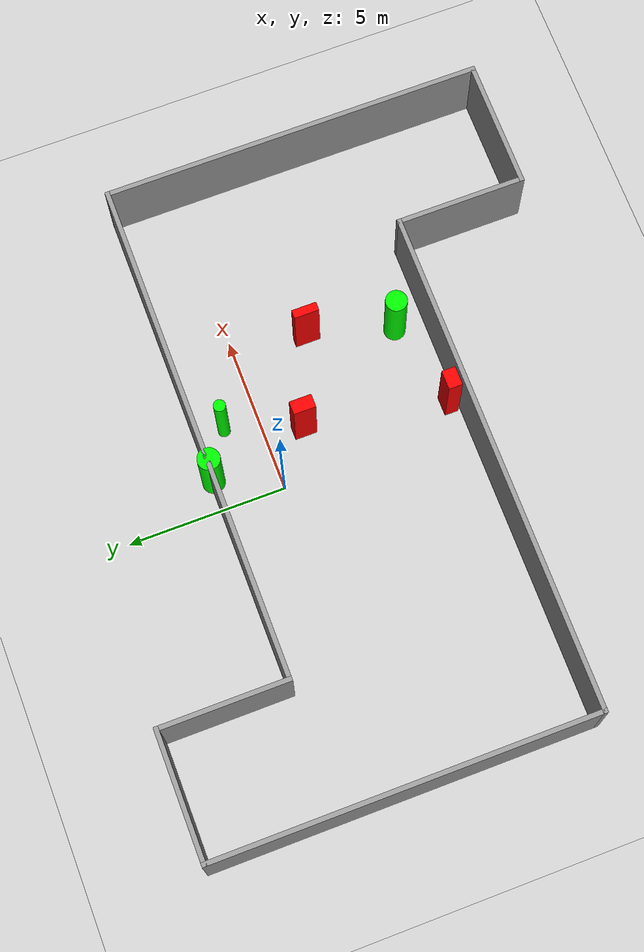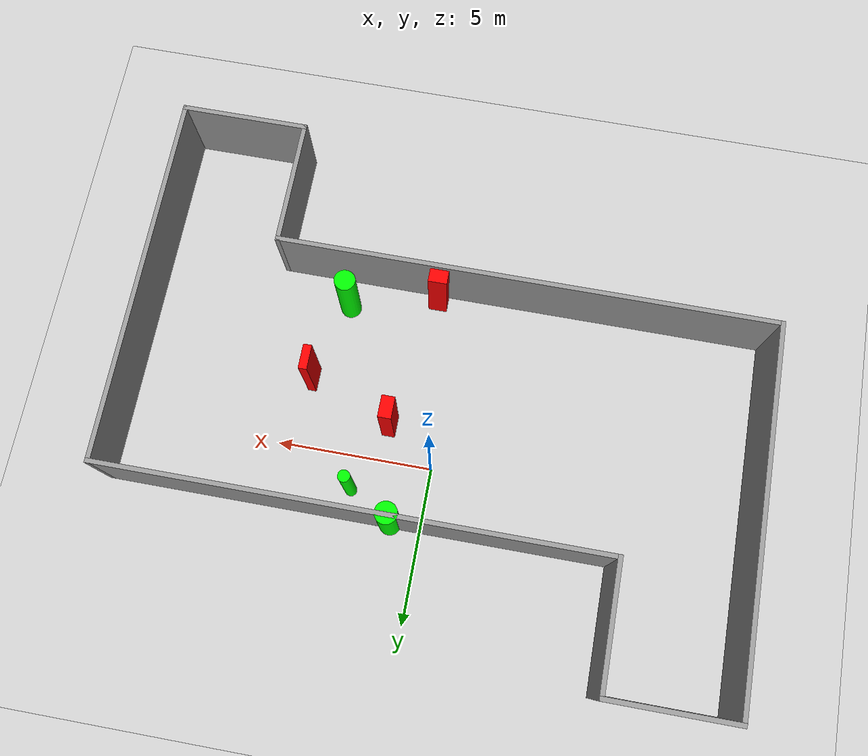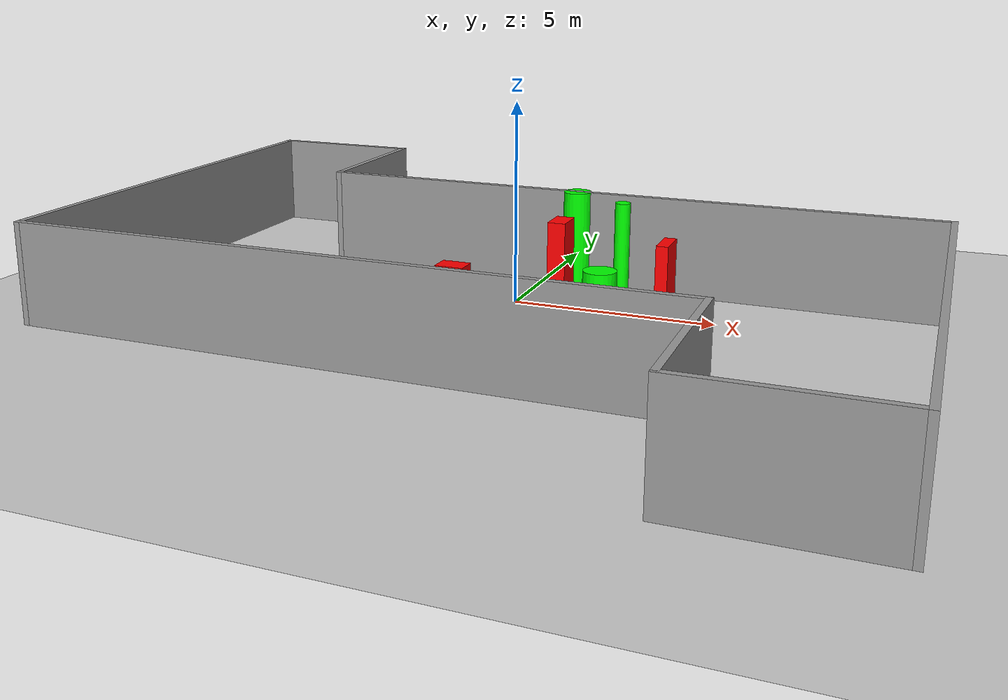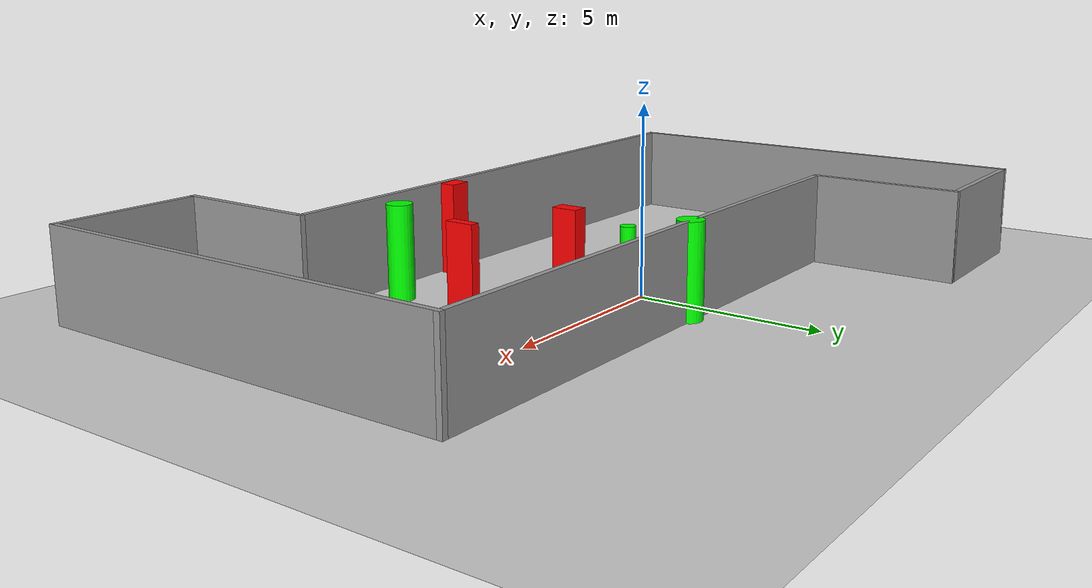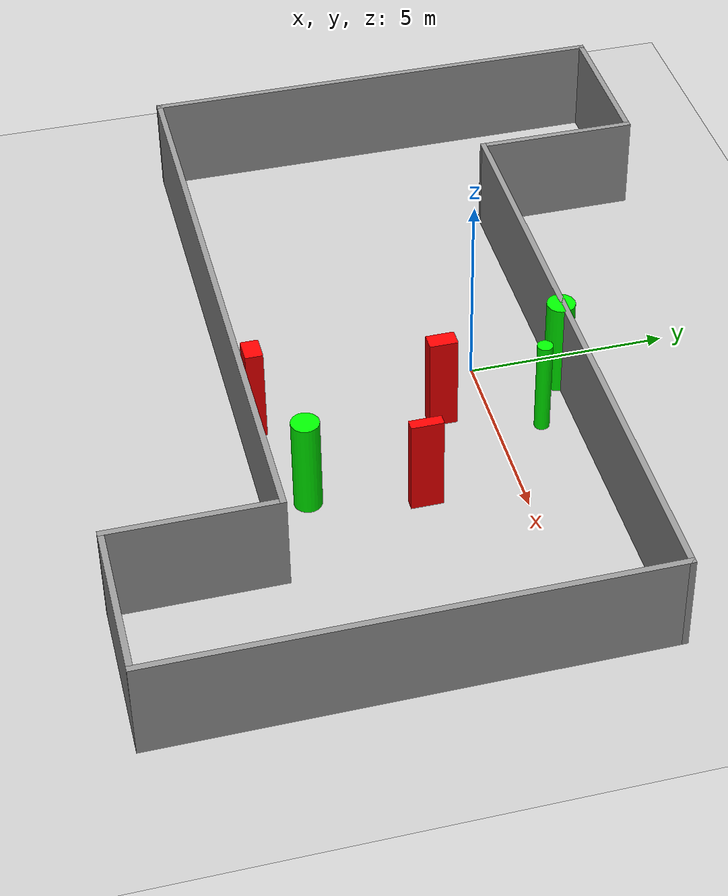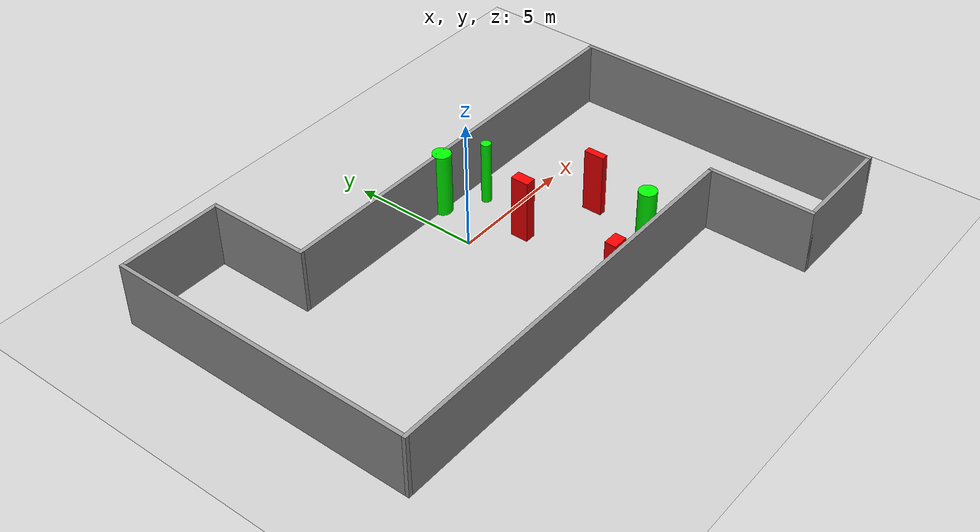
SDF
<sdf version="1.7">
 <world name="default">
  <light name="sun" type="directional">
   <pose>0 0 10 0 -0 0</pose>
   <diffuse>0.8 0.8 0.8 1</diffuse>
   <specular>0.2 0.2 0.2 1</specular>
   <attenuation>
    <range>1000</range>
    <constant>0.9</constant>
    <linear>0.01</linear>
    <quadratic>0.001</quadratic>
   </attenuation>
   <direction>-0.5 0.1 -0.9</direction>
   <spot><inner_angle>0</inner_angle><outer_angle>0</outer_angle><falloff>0</falloff></spot>
  </light>
  <model name="ground_plane">
   <static>1</static>
   <link name="link">
    <collision name="collision">
     <geometry><plane><normal>0 0 1</normal><size>100 100</size></plane></geometry>
     <surface>
      <contact><collide_bitmask>65535</collide_bitmask></contact>
      <friction><ode><mu>100</mu><mu2>50</mu2></ode></friction>
     </surface>
    </collision>
    <visual name="visual">
     <cast_shadows>0</cast_shadows>
     <geometry><plane><normal>0 0 1</normal><size>100 100</size></plane></geometry>
     <material>
      <script><uri>file://media/materials/scripts/gazebo.material</uri><name>Gazebo/Grey</name></script>
     </material>
    </visual>
   </link>
  </model>
  <gravity>0 0 -9.8</gravity>
  <magnetic_field>6e-06 2.3e-05 -4.2e-05</magnetic_field>
  <atmosphere type="adiabatic"/>
  <physics type="ode">
   <max_step_size>0.001</max_step_size>
   <real_time_factor>1</real_time_factor>
   <real_time_update_rate>1000</real_time_update_rate>
  </physics>
  <scene><ambient>0.4 0.4 0.4 1</ambient><background>0.7 0.7 0.7 1</background><shadows>1</shadows></scene>
  <spherical_coordinates>
   <surface_model>EARTH_WGS84</surface_model>
   <latitude_deg>0</latitude_deg>
   <longitude_deg>0</longitude_deg>
   <elevation>0</elevation>
   <heading_deg>0</heading_deg>
  </spherical_coordinates>
  <model name="my_base_walls">
   <link name="Wall_13">
    <collision name="Wall_13_Collision">
     <geometry><box><size>12.15 0.15 2.5</size></box></geometry>
     <pose>0 0 1.25 0 -0 0</pose>
    </collision>
    <visual name="Wall_13_Visual">
     <pose>0 0 1.25 0 -0 0</pose>
     <geometry><box><size>12.15 0.15 2.5</size></box></geometry>
     <material>
      <script><uri>file://media/materials/scripts/gazebo.material</uri><name>Gazebo/Grey</name></script>
      <ambient>1 1 1 1</ambient>
     </material>
     <meta><layer>0</layer></meta>
    </visual>
    <pose>10 -2 0 0 -0 1.5708</pose>
   </link>
   <link name="Wall_15">
    <collision name="Wall_15_Collision">
     <geometry><box><size>16.15 0.15 2.5</size></box></geometry>
     <pose>0 0 1.25 0 -0 0</pose>
    </collision>
    <visual name="Wall_15_Visual">
     <pose>0 0 1.25 0 -0 0</pose>
     <geometry><box><size>16.15 0.15 2.5</size></box></geometry>
     <material>
      <script><uri>file://media/materials/scripts/gazebo.material</uri><name>Gazebo/Grey</name></script>
      <ambient>1 1 1 1</ambient>
     </material>
     <meta><layer>0</layer></meta>
    </visual>
    <pose>2 4 0 0 -0 3.14159</pose>
   </link>
   <link name="Wall_17">
    <collision name="Wall_17_Collision">
     <geometry><box><size>4.15 0.15 2.5</size></box></geometry>
     <pose>0 0 1.25 0 -0 0</pose>
    </collision>
    <visual name="Wall_17_Visual">
     <pose>0 0 1.25 0 -0 0</pose>
     <geometry><box><size>4.15 0.15 2.5</size></box></geometry>
     <material>
      <script><uri>file://media/materials/scripts/gazebo.material</uri><name>Gazebo/Grey</name></script>
      <ambient>1 1 1 1</ambient>
     </material>
     <meta><layer>0</layer></meta>
    </visual>
    <pose>6 -6 0 0 -0 -1.5708</pose>
   </link>
   <link name="Wall_19">
    <collision name="Wall_19_Collision">
     <geometry><box><size>12.15 0.15 2.5</size></box></geometry>
     <pose>0 0 1.25 0 -0 0</pose>
    </collision>
    <visual name="Wall_19_Visual">
     <pose>0 0 1.25 0 -0 0</pose>
     <geometry><box><size>12.15 0.15 2.5</size></box></geometry>
     <material>
      <script><uri>file://media/materials/scripts/gazebo.material</uri><name>Gazebo/Grey</name></script>
      <ambient>1 1 1 1</ambient>
     </material>
     <meta><layer>0</layer></meta>
    </visual>
    <pose>-10 2 0 0 -0 1.5708</pose>
   </link>
   <link name="Wall_21">
    <collision name="Wall_21_Collision">
     <geometry><box><size>4.15 0.15 2.5</size></box></geometry>
     <pose>0 0 1.25 0 -0 0</pose>
    </collision>
    <visual name="Wall_21_Visual">
     <pose>0 0 1.25 0 -0 0</pose>
     <geometry><box><size>4.15 0.15 2.5</size></box></geometry>
     <material>
      <script><uri>file://media/materials/scripts/gazebo.material</uri><name>Gazebo/Grey</name></script>
      <ambient>1 1 1 1</ambient>
     </material>
     <meta><layer>0</layer></meta>
    </visual>
    <pose>-8 8 0 0 -0 0</pose>
   </link>
   <link name="Wall_23">
    <collision name="Wall_23_Collision">
     <geometry><box><size>4.15 0.15 2.5</size></box></geometry>
     <pose>0 0 1.25 0 -0 0</pose>
    </collision>
    <visual name="Wall_23_Visual">
     <pose>0 0 1.25 0 -0 0</pose>
     <geometry><box><size>4.15 0.15 2.5</size></box></geometry>
     <material>
      <script><uri>file://media/materials/scripts/gazebo.material</uri><name>Gazebo/Grey</name></script>
      <ambient>1 1 1 1</ambient>
     </material>
     <meta><layer>0</layer></meta>
    </visual>
    <pose>-6 6 0 0 -0 -1.5708</pose>
   </link>
   <link name="Wall_25">
    <collision name="Wall_25_Collision">
     <geometry><box><size>4.15 0.15 2.5</size></box></geometry>
     <pose>0 0 1.25 0 -0 0</pose>
    </collision>
    <visual name="Wall_25_Visual">
     <pose>0 0 1.25 0 -0 0</pose>
     <geometry><box><size>4.15 0.15 2.5</size></box></geometry>
     <material>
      <script><uri>file://media/materials/scripts/gazebo.material</uri><name>Gazebo/Grey</name></script>
      <ambient>1 1 1 1</ambient>
     </material>
     <meta><layer>0</layer></meta>
    </visual>
    <pose>8 -8 0 0 -0 0</pose>
   </link>
   <link name="Wall_9">
    <collision name="Wall_9_Collision">
     <geometry><box><size>16.15 0.15 2.5</size></box></geometry>
     <pose>0 0 1.25 0 -0 0</pose>
    </collision>
    <visual name="Wall_9_Visual">
     <pose>0 0 1.25 0 -0 0</pose>
     <geometry><box><size>16.15 0.15 2.5</size></box></geometry>
     <material>
      <script><uri>file://media/materials/scripts/gazebo.material</uri><name>Gazebo/Grey</name></script>
      <ambient>1 1 1 1</ambient>
     </material>
     <meta><layer>0</layer></meta>
    </visual>
    <pose>-2 -4 0 0 -0 3.14159</pose>
   </link>
   <static>1</static>
   <pose>-0 -2 0 0 -0 0</pose>
  </model>
  <model name="cylinder1">
   <static>1</static>
   <link name="link">
    <inertial>
     <mass>1</mass>
     <inertia><ixx>0.5</ixx><ixy>0</ixy><ixz>0</ixz><iyy>0.5</iyy><iyz>0</iyz><izz>1</izz></inertia>
    </inertial>
    <collision name="collision">
     <geometry><cylinder><radius>0.18995574052644645</radius><length>2.5</length></cylinder></geometry>
    </collision>
    <visual name="visual">
     <geometry><cylinder><radius>0.18995574052644645</radius><length>2.5</length></cylinder></geometry>
     <material>
      <ambient>0 1 0 1</ambient>
      <diffuse>0 1 0 1</diffuse>
      <specular>0.1 0.1 0.1 1</specular>
      <emissive>0 0 0 0</emissive>
     </material>
    </visual>
   </link>
   <pose>2.385269963423241 1.1038499742370735 1.25 0 0 0</pose>
  </model>
  <model name="cylinder2">
   <static>1</static>
   <link name="link">
    <inertial>
     <mass>1</mass>
     <inertia><ixx>0.5</ixx><ixy>0</ixy><ixz>0</ixz><iyy>0.5</iyy><iyz>0</iyz><izz>1</izz></inertia>
    </inertial>
    <collision name="collision">
     <geometry><cylinder><radius>0.3402718140209927</radius><length>2.5</length></cylinder></geometry>
    </collision>
    <visual name="visual">
     <geometry><cylinder><radius>0.3402718140209927</radius><length>2.5</length></cylinder></geometry>
     <material>
      <ambient>0 1 0 1</ambient>
      <diffuse>0 1 0 1</diffuse>
      <specular>0.1 0.1 0.1 1</specular>
      <emissive>0 0 0 0</emissive>
     </material>
    </visual>
   </link>
   <pose>3.621923566049361 -4.9797829596794445 1.25 0 0 0</pose>
  </model>
  <model name="cylinder3">
   <static>1</static>
   <link name="link">
    <inertial>
     <mass>1</mass>
     <inertia><ixx>0.5</ixx><ixy>0</ixy><ixz>0</ixz><iyy>0.5</iyy><iyz>0</iyz><izz>1</izz></inertia>
    </inertial>
    <collision name="collision">
     <geometry><cylinder><radius>0.3531153663879964</radius><length>2.5</length></cylinder></geometry>
    </collision>
    <visual name="visual">
     <geometry><cylinder><radius>0.3531153663879964</radius><length>2.5</length></cylinder></geometry>
     <material>
      <ambient>0 1 0 1</ambient>
      <diffuse>0 1 0 1</diffuse>
      <specular>0.1 0.1 0.1 1</specular>
      <emissive>0 0 0 0</emissive>
     </material>
    </visual>
   </link>
   <pose>0.9500979709496802 1.9535839821315735 1.25 0 0 0</pose>
  </model>
  <model name="box1">
   <static>1</static>
   <link name="link">
    <inertial>
     <mass>1</mass>
     <inertia><ixx>0.083</ixx><ixy>0</ixy><ixz>0</ixz><iyy>0.083</iyy><iyz>0</iyz><izz>0.083</izz></inertia>
    </inertial>
    <collision name="collision">
     <geometry><box><size>0.6034556424370474 0.4375114602858543 2.5</size></box></geometry>
    </collision>
    <visual name="visual">
     <geometry><box><size>0.6034556424370474 0.4375114602858543 2.5</size></box></geometry>
     <material>
      <ambient>1 0 0 1</ambient>
      <diffuse>1 0 0 1</diffuse>
      <specular>0.1 0.1 0.1 1</specular>
      <emissive>0 0 0 0</emissive>
     </material>
    </visual>
    <sensor name="my_contact" type="contact">
     <contact><collision>box_collision</collision><topic>__default_topic__</topic></contact>
    </sensor>
   </link>
   <pose>0.7554350527063916 -5.636981500684352 1.25 0 0 0</pose>
  </model>
  <model name="box2">
   <static>1</static>
   <link name="link">
    <inertial>
     <mass>1</mass>
     <inertia><ixx>0.083</ixx><ixy>0</ixy><ixz>0</ixz><iyy>0.083</iyy><iyz>0</iyz><izz>0.083</izz></inertia>
    </inertial>
    <collision name="collision">
     <geometry><box><size>0.2687839393962964 0.7869077446199721 2.5</size></box></geometry>
    </collision>
    <visual name="visual">
     <geometry><box><size>0.2687839393962964 0.7869077446199721 2.5</size></box></geometry>
     <material>
      <ambient>1 0 0 1</ambient>
      <diffuse>1 0 0 1</diffuse>
      <specular>0.1 0.1 0.1 1</specular>
      <emissive>0 0 0 0</emissive>
     </material>
    </visual>
    <sensor name="my_contact" type="contact">
     <contact><collision>box_collision</collision><topic>__default_topic__</topic></contact>
    </sensor>
   </link>
   <pose>4.30808610874897 -2.3143970245721928 1.25 0 0 0</pose>
  </model>
  <model name="box3">
   <static>1</static>
   <link name="link">
    <inertial>
     <mass>1</mass>
     <inertia><ixx>0.083</ixx><ixy>0</ixy><ixz>0</ixz><iyy>0.083</iyy><iyz>0</iyz><izz>0.083</izz></inertia>
    </inertial>
    <collision name="collision">
     <geometry><box><size>0.41971873621858063 0.6998776869623993 2.5</size></box></geometry>
    </collision>
    <visual name="visual">
     <geometry><box><size>0.41971873621858063 0.6998776869623993 2.5</size></box></geometry>
     <material>
      <ambient>1 0 0 1</ambient>
      <diffuse>1 0 0 1</diffuse>
      <specular>0.1 0.1 0.1 1</specular>
      <emissive>0 0 0 0</emissive>
     </material>
    </visual>
    <sensor name="my_contact" type="contact">
     <contact><collision>box_collision</collision><topic>__default_topic__</topic></contact>
    </sensor>
   </link>
   <pose>1.5527790504389642 -1.200377029232241 1.25 0 0 0</pose>
  </model>
 </world>
</sdf>
